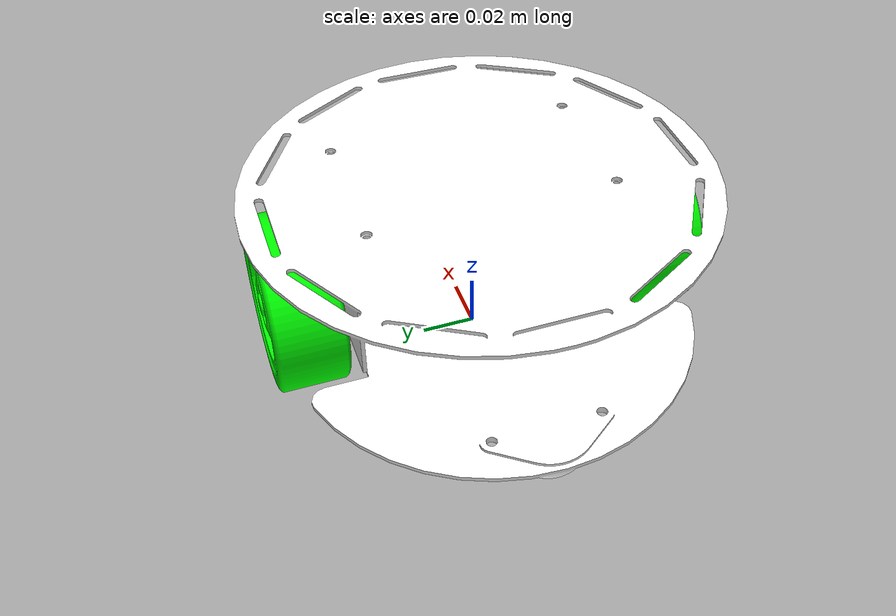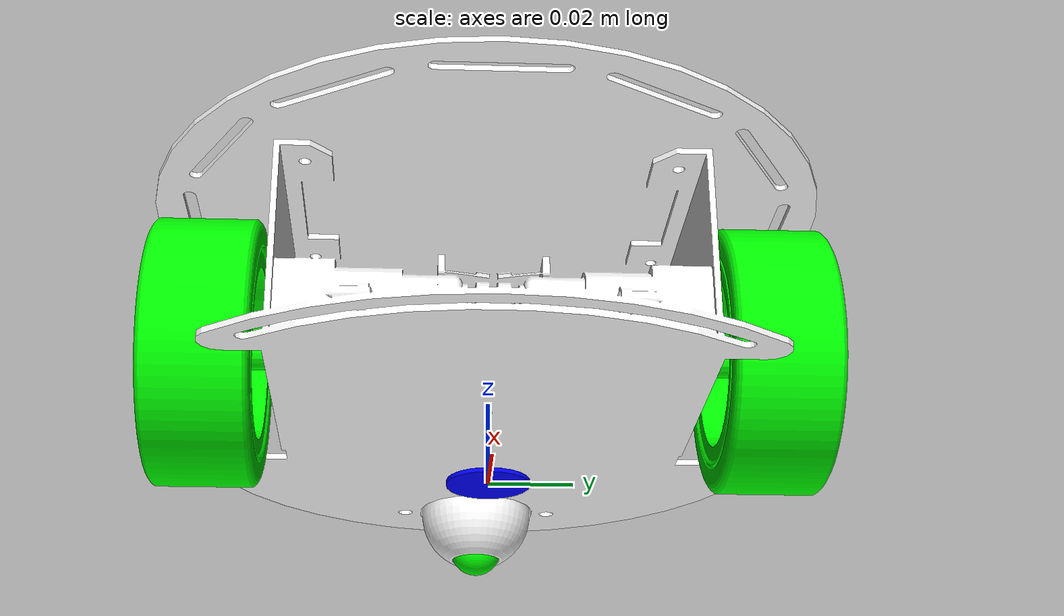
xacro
<?xml version="1.0" encoding="utf-8"?>
<robot name="abot"
	xmlns:xacro="http://www.ros.org/wiki/xacro">
	<!-- Matherials -->
	<xacro:include filename="$(find abot_description)/urdf/abot_matherials.xacro" />
	<xacro:property name="clearance" value="0.018" />
	<!-- abot_base -->
	<link name="abot_base">
		<inertial>
			<origin xyz="-0.024498 1.0952E-13 0.022295" rpy="0 0 0"/>
			<mass value="0.27459"/>
			<inertia ixx="0.00032396" ixy="-1.1142E-12" ixz="-9.1302E-06" iyy="0.00030091" iyz="-3.3253E-10" izz="0.00056103"/>
		</inertial>
		<visual>
			<origin xyz="0 0 0" rpy="0 0 0" />
			<geometry>
				<mesh filename="package://abot_description/meshes/abot_base.STL" />
			</geometry>
			<material name="White" />
		</visual>
		<collision>
			<origin xyz="0 0 0" rpy="0 0 0" />
			<geometry>
				<mesh filename="package://abot_description/meshes/abot_base.STL" />
			</geometry>
		</collision>
	</link>
	<!-- base_link -->
	<link name="base_link">
		<visual>
			<origin xyz="0 0 0" rpy="0 0 0" />
			<geometry>
				<sphere radius="0.001" />
			</geometry>
		</visual>
	</link>
	<joint name="base_link_to_abot_base" type="fixed">
		<origin xyz="0 0 0" rpy="0 0 0" />
		<parent link="base_link" />
		<child link="abot_base" />
	</joint>
	<!-- base_footprint -->
	<link name="base_footprint">
		<visual>
			<origin xyz="0 0 0" rpy="0 0 0" />
			<geometry>
				<cylinder length="0.001" radius="0.010" />
			</geometry>
			<material name="Blue" />
		</visual>
	</link>
	<joint name="base_footprint_to_base_link" type="fixed">
		<origin xyz="0 0 ${clearance}" rpy="0 0 0" />
		<parent link="base_footprint" />
		<child link="base_link" />
	</joint>
	<!-- Wheels -->
	<xacro:include filename="$(find abot_description)/urdf/abot_left_wheel.xacro" />
	<xacro:include filename="$(find abot_description)/urdf/abot_right_wheel.xacro" />
	<xacro:include filename="$(find abot_description)/urdf/abot_caster_wheel.xacro" />
</robot>

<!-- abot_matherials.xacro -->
<robot
	xmlns:xacro="http://www.ros.org/wiki/xacro">
	<material name="Green">
		<color rgba="0.0 1.0 0.0 1.0"/>
	</material>
	<material name="Blue">
		<color rgba="0.0 0.0 1.0 1.0"/>
	</material>
	<material name="Red">
		<color rgba="1.0 0.0 0.0 1.0"/>
	</material>
	<material name="White">
		<color rgba="1.0 1.0 1.0 1.0"/>
	</material>
	<material name="Yellow">
		<color rgba="1.0 1.0 0.0 1.0"/>
	</material>
</robot>

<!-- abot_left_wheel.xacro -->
<robot name="abot"
	xmlns:xacro="http://www.ros.org/wiki/xacro">
	<!-- left_wheel -->
	<link name="abot_left_wheel">
		<inertial>
			<origin xyz="1.9255E-10 0.00056576 -1.0414E-10" rpy="0 0 0"/>
			<mass value="0.050464"/>
			<inertia ixx="2.0701E-05" ixy="-3.8089E-14" ixz="1.3584E-15" iyy="3.5827E-05" iyz="2.1838E-15" izz="2.0701E-05"/>
		</inertial>
		<visual>
			<origin xyz="0 0 0" rpy="0 0 0" />
			<geometry>
				<mesh filename="package://abot_description/meshes/abot_left_wheel.STL" />
			</geometry>
			<material name="Green" />
		</visual>
		<collision>
			<origin xyz="0 0 0" rpy="0 0 0" />
			<geometry>
				<mesh filename="package://abot_description/meshes/abot_left_wheel.STL" />
			</geometry>
		</collision>
	</link>
	<joint name="left_wheel_to_base" type="continuous">
		<origin xyz="0 0.068 0.0145" rpy="0 0 0" />
		<parent link="abot_base" />
		<child link="abot_left_wheel" />
		<axis xyz="0 1 0" />
	</joint>
</robot>

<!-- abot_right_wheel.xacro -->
<robot name="abot"
	xmlns:xacro="http://www.ros.org/wiki/xacro">
	<!-- right_wheel -->
	<link name="abot_right_wheel">
		<inertial>
			<origin xyz="1.9255E-10 -0.00056576 1.0414E-10" rpy="0 0 0"/>
			<mass value="0.050464"/>
			<inertia ixx="2.0701E-05" ixy="3.8089E-14" ixz="-1.3584E-15" iyy="3.5827E-05" iyz="2.1838E-15" izz="2.0701E-05"/>
		</inertial>
		<visual>
			<origin xyz="0 0 0" rpy="0 0 0" />
			<geometry>
				<mesh filename="package://abot_description/meshes/abot_right_wheel.STL" />
			</geometry>
			<material name="Green" />
		</visual>
		<collision>
			<origin xyz="0 0 0" rpy="0 0 0" />
			<geometry>
				<mesh filename="package://abot_description/meshes/abot_right_wheel.STL" />
			</geometry>
		</collision>
	</link>
	<joint name="right_wheel_to_base" type="continuous">
		<origin xyz="0 -0.068 0.0145" rpy="0 0 0" />
		<parent link="abot_base" />
		<child link="abot_right_wheel" />
		<axis xyz="0 1 0" />
	</joint>
</robot>

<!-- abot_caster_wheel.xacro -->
<robot name="abot"
	xmlns:xacro="http://www.ros.org/wiki/xacro">
	<!-- caster_wheel -->
	<link name="abot_caster_wheel">
		<inertial>
			<origin xyz="0 1.6073E-19 0" rpy="0 0 0"/>
			<mass value="0.011207"/>
			<inertia ixx="2.1965E-07" ixy="-1.5533E-55" ixz="-1.9776E-56" iyy="2.1965E-07" iyz="-2.2674E-40" izz="2.1965E-07"/>
		</inertial>
		<visual>
			<origin xyz="0 0 0" rpy="0 0 0" />
			<geometry>
				<mesh filename="package://abot_description/meshes/abot_caster_wheel.STL" />
			</geometry>
			<material name="Green" />
		</visual>
		<collision>
			<origin xyz="0 0 0" rpy="0 0 0" />
			<geometry>
				<mesh filename="package://abot_description/meshes/abot_caster_wheel.STL" />
			</geometry>
		</collision>
	</link>
	<joint name="caster_wheel_to_base" type="continuous">
		<origin xyz="-0.078 0 -0.011" rpy="0 0 0" />
		<parent link="abot_base" />
		<child link="abot_caster_wheel" />
		<axis xyz="0 1 0" />
	</joint>
</robot>
